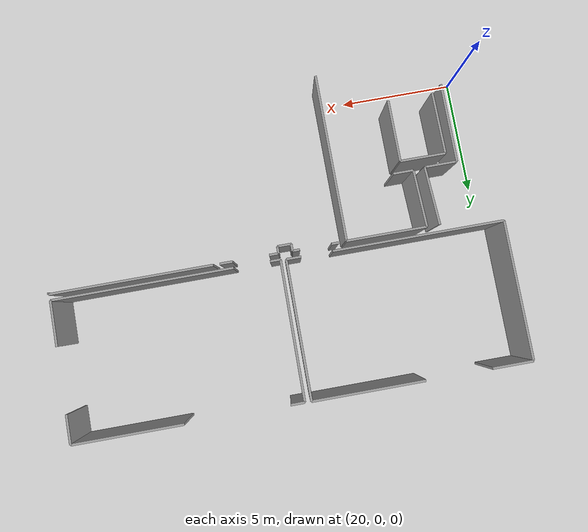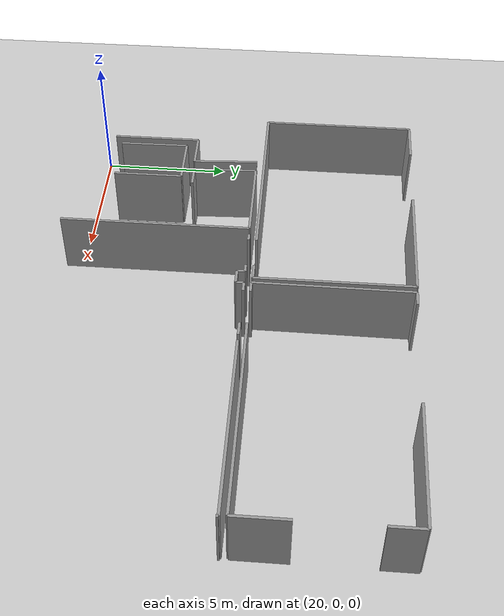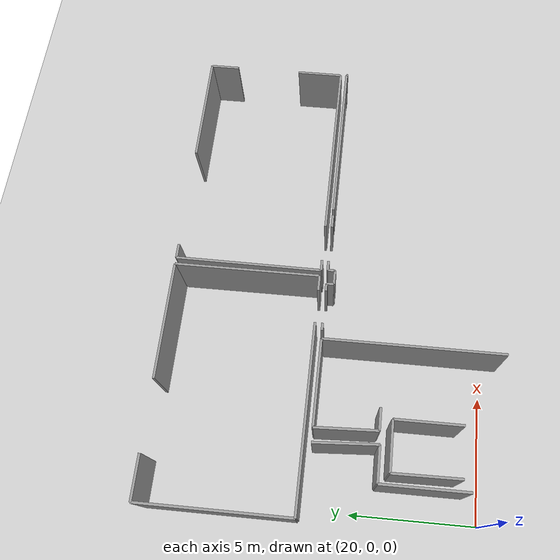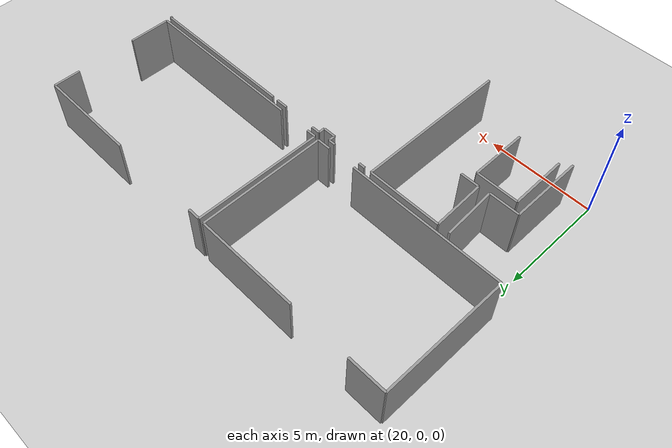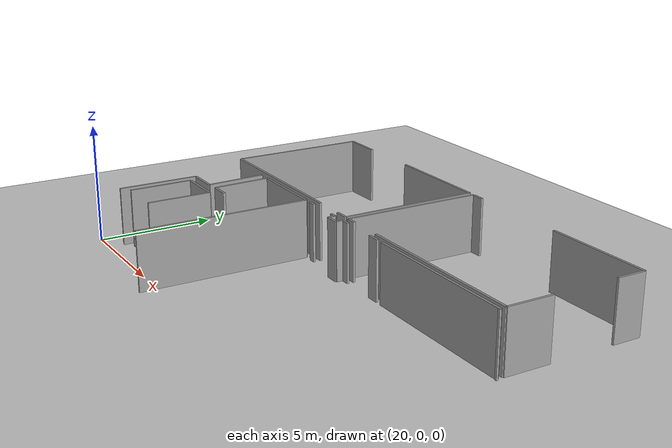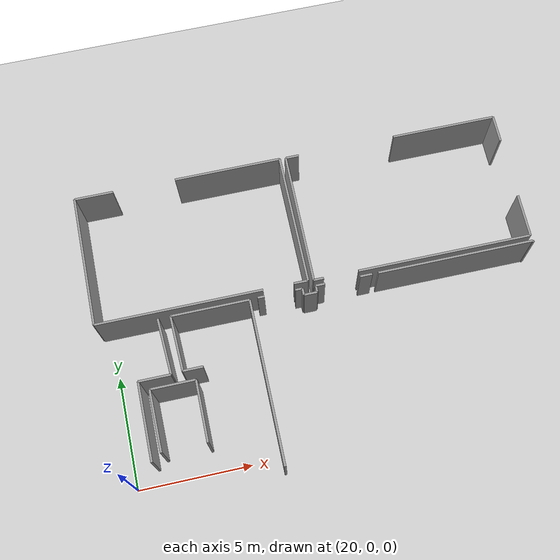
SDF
<sdf version="1.6">
 <world name="default">
  <model name="ground_plane">
   <static>1</static>
   <link name="link">
    <collision name="collision">
     <geometry><plane><normal>0 0 1</normal><size>100 100</size></plane></geometry>
     <surface><friction><ode><mu>100</mu><mu2>50</mu2></ode></friction></surface>
    </collision>
    <visual name="visual">
     <cast_shadows>0</cast_shadows>
     <geometry><plane><normal>0 0 1</normal><size>100 100</size></plane></geometry>
     <material>
      <script><uri>file://media/materials/scripts/gazebo.material</uri><name>Gazebo/Grey</name></script>
     </material>
    </visual>
   </link>
  </model>
  <model name="0510030966_A-40">
   <static>1</static>
   <link name="Wall_209">
    <collision name="Wall_209_Collision">
     <geometry><box><size>2.5475012175 0.1 2.5</size></box></geometry>
     <pose>1.27375060875 0 1.25 0 0 0</pose>
    </collision>
    <visual name="Wall_209_Visual">
     <pose>1.27375060875 0 1.25 0 0 0</pose>
     <geometry><box><size>2.5475012175 0.1 2.5</size></box></geometry>
     <material>
      <script><uri>file://media/materials/scripts/gazebo.material</uri><name>Gazebo/Grey</name></script>
      <ambient>1 1 1 1</ambient>
     </material>
    </visual>
    <pose>61.2576683221 -6.26547953209 0 0 0 -1.51587582899</pose>
   </link>
   <link name="Wall_210">
    <collision name="Wall_210_Collision">
     <geometry><box><size>1.40220746066 0.1 2.5</size></box></geometry>
     <pose>0.701103730329 0 1.25 0 0 0</pose>
    </collision>
    <visual name="Wall_210_Visual">
     <pose>0.701103730329 0 1.25 0 0 0</pose>
     <geometry><box><size>1.40220746066 0.1 2.5</size></box></geometry>
     <material>
      <script><uri>file://media/materials/scripts/gazebo.material</uri><name>Gazebo/Grey</name></script>
      <ambient>1 1 1 1</ambient>
     </material>
    </visual>
    <pose>61.3975080335 -8.8091397508 0 0 0 3.14159265359</pose>
   </link>
   <link name="Wall_211">
    <collision name="Wall_211_Collision">
     <geometry><box><size>3.44772839851 0.1 2.5</size></box></geometry>
     <pose>1.72386419926 0 1.25 0 0 0</pose>
    </collision>
    <visual name="Wall_211_Visual">
     <pose>1.72386419926 0 1.25 0 0 0</pose>
     <geometry><box><size>3.44772839851 0.1 2.5</size></box></geometry>
     <material>
      <script><uri>file://media/materials/scripts/gazebo.material</uri><name>Gazebo/Grey</name></script>
      <ambient>1 1 1 1</ambient>
     </material>
    </visual>
    <pose>59.9953005728 -8.8091397508 0 0 0 -1.57079632679</pose>
   </link>
   <link name="Wall_215">
    <collision name="Wall_215_Collision">
     <geometry><box><size>0.877395755274 0.1 2.5</size></box></geometry>
     <pose>0.438697877637 0 1.25 0 0 0</pose>
    </collision>
    <visual name="Wall_215_Visual">
     <pose>0.438697877637 0 1.25 0 0 0</pose>
     <geometry><box><size>0.877395755274 0.1 2.5</size></box></geometry>
     <material>
      <script><uri>file://media/materials/scripts/gazebo.material</uri><name>Gazebo/Grey</name></script>
      <ambient>1 1 1 1</ambient>
     </material>
    </visual>
    <pose>62.7804097392 -8.75960524812 0 0 0 3.14159265359</pose>
   </link>
   <link name="Wall_216">
    <collision name="Wall_216_Collision">
     <geometry><box><size>2.48368764992 0.1 2.5</size></box></geometry>
     <pose>1.24184382496 0 1.25 0 0 0</pose>
    </collision>
    <visual name="Wall_216_Visual">
     <pose>1.24184382496 0 1.25 0 0 0</pose>
     <geometry><box><size>2.48368764992 0.1 2.5</size></box></geometry>
     <material>
      <script><uri>file://media/materials/scripts/gazebo.material</uri><name>Gazebo/Grey</name></script>
      <ambient>1 1 1 1</ambient>
     </material>
    </visual>
    <pose>61.903013984 -8.75960524812 0 0 0 1.60839182749</pose>
   </link>
   <link name="Wall_217">
    <collision name="Wall_217_Collision">
     <geometry><box><size>3.45928644914 0.1 2.5</size></box></geometry>
     <pose>1.72964322457 0 1.25 0 0 0</pose>
    </collision>
    <visual name="Wall_217_Visual">
     <pose>1.72964322457 0 1.25 0 0 0</pose>
     <geometry><box><size>3.45928644914 0.1 2.5</size></box></geometry>
     <material>
      <script><uri>file://media/materials/scripts/gazebo.material</uri><name>Gazebo/Grey</name></script>
      <ambient>1 1 1 1</ambient>
     </material>
    </visual>
    <pose>61.8096604981 -6.27767264044 0 0 0 0.0</pose>
   </link>
   <link name="Wall_218">
    <collision name="Wall_218_Collision">
     <geometry><box><size>7.30367190378 0.1 2.5</size></box></geometry>
     <pose>3.65183595189 0 1.25 0 0 0</pose>
    </collision>
    <visual name="Wall_218_Visual">
     <pose>3.65183595189 0 1.25 0 0 0</pose>
     <geometry><box><size>7.30367190378 0.1 2.5</size></box></geometry>
     <material>
      <script><uri>file://media/materials/scripts/gazebo.material</uri><name>Gazebo/Grey</name></script>
      <ambient>1 1 1 1</ambient>
     </material>
    </visual>
    <pose>65.2689469473 -6.27767264044 0 0 0 -1.57079632679</pose>
   </link>
   <link name="Wall_223">
    <collision name="Wall_223_Collision">
     <geometry><box><size>0.0750638233015 0.1 2.5</size></box></geometry>
     <pose>0.0375319116508 0 1.25 0 0 0</pose>
    </collision>
    <visual name="Wall_223_Visual">
     <pose>0.0375319116508 0 1.25 0 0 0</pose>
     <geometry><box><size>0.0750638233015 0.1 2.5</size></box></geometry>
     <material>
      <script><uri>file://media/materials/scripts/gazebo.material</uri><name>Gazebo/Grey</name></script>
      <ambient>1 1 1 1</ambient>
     </material>
    </visual>
    <pose>77.946985381 -6.33584392821 0 0 0 1.57079632679</pose>
   </link>
   <link name="Wall_224">
    <collision name="Wall_224_Collision">
     <geometry><box><size>6.98233269404 0.1 2.5</size></box></geometry>
     <pose>3.49116634702 0 1.25 0 0 0</pose>
    </collision>
    <visual name="Wall_224_Visual">
     <pose>3.49116634702 0 1.25 0 0 0</pose>
     <geometry><box><size>6.98233269404 0.1 2.5</size></box></geometry>
     <material>
      <script><uri>file://media/materials/scripts/gazebo.material</uri><name>Gazebo/Grey</name></script>
      <ambient>1 1 1 1</ambient>
     </material>
    </visual>
    <pose>77.946985381 -6.26078010491 0 0 0 3.14159265359</pose>
   </link>
   <link name="Wall_232">
    <collision name="Wall_232_Collision">
     <geometry><box><size>0.300636327842 0.1 2.5</size></box></geometry>
     <pose>0.150318163921 0 1.25 0 0 0</pose>
    </collision>
    <visual name="Wall_232_Visual">
     <pose>0.150318163921 0 1.25 0 0 0</pose>
     <geometry><box><size>0.300636327842 0.1 2.5</size></box></geometry>
     <material>
      <script><uri>file://media/materials/scripts/gazebo.material</uri><name>Gazebo/Grey</name></script>
      <ambient>1 1 1 1</ambient>
     </material>
    </visual>
    <pose>65.6099729465 -6.26319332427 0 0 0 0.0</pose>
   </link>
   <link name="Wall_233">
    <collision name="Wall_233_Collision">
     <geometry><box><size>0.317401851828 0.1 2.5</size></box></geometry>
     <pose>0.158700925914 0 1.25 0 0 0</pose>
    </collision>
    <visual name="Wall_233_Visual">
     <pose>0.158700925914 0 1.25 0 0 0</pose>
     <geometry><box><size>0.317401851828 0.1 2.5</size></box></geometry>
     <material>
      <script><uri>file://media/materials/scripts/gazebo.material</uri><name>Gazebo/Grey</name></script>
      <ambient>1 1 1 1</ambient>
     </material>
    </visual>
    <pose>67.2733161444 -6.26319332427 0 0 0 0.0</pose>
   </link>
   <link name="Wall_234">
    <collision name="Wall_234_Collision">
     <geometry><box><size>0.298223108481 0.1 2.5</size></box></geometry>
     <pose>0.14911155424 0 1.25 0 0 0</pose>
    </collision>
    <visual name="Wall_234_Visual">
     <pose>0.14911155424 0 1.25 0 0 0</pose>
     <geometry><box><size>0.298223108481 0.1 2.5</size></box></geometry>
     <material>
      <script><uri>file://media/materials/scripts/gazebo.material</uri><name>Gazebo/Grey</name></script>
      <ambient>1 1 1 1</ambient>
     </material>
    </visual>
    <pose>67.5907179963 -6.26319332427 0 0 0 -1.57079632679</pose>
   </link>
   <link name="Wall_235">
    <collision name="Wall_235_Collision">
     <geometry><box><size>0.592889893691 0.1 2.5</size></box></geometry>
     <pose>0.296444946846 0 1.25 0 0 0</pose>
    </collision>
    <visual name="Wall_235_Visual">
     <pose>0.296444946846 0 1.25 0 0 0</pose>
     <geometry><box><size>0.592889893691 0.1 2.5</size></box></geometry>
     <material>
      <script><uri>file://media/materials/scripts/gazebo.material</uri><name>Gazebo/Grey</name></script>
      <ambient>1 1 1 1</ambient>
     </material>
    </visual>
    <pose>67.5907179963 -6.56141643275 0 0 0 0.0</pose>
   </link>
   <link name="Wall_236">
    <collision name="Wall_236_Collision">
     <geometry><box><size>0.300636327842 0.1 2.5</size></box></geometry>
     <pose>0.150318163921 0 1.25 0 0 0</pose>
    </collision>
    <visual name="Wall_236_Visual">
     <pose>0.150318163921 0 1.25 0 0 0</pose>
     <geometry><box><size>0.300636327842 0.1 2.5</size></box></geometry>
     <material>
      <script><uri>file://media/materials/scripts/gazebo.material</uri><name>Gazebo/Grey</name></script>
      <ambient>1 1 1 1</ambient>
     </material>
    </visual>
    <pose>68.18360789 -6.56141643275 0 0 0 1.57079632679</pose>
   </link>
   <link name="Wall_237">
    <collision name="Wall_237_Collision">
     <geometry><box><size>0.400848437123 0.1 2.5</size></box></geometry>
     <pose>0.200424218561 0 1.25 0 0 0</pose>
    </collision>
    <visual name="Wall_237_Visual">
     <pose>0.200424218561 0 1.25 0 0 0</pose>
     <geometry><box><size>0.400848437123 0.1 2.5</size></box></geometry>
     <material>
      <script><uri>file://media/materials/scripts/gazebo.material</uri><name>Gazebo/Grey</name></script>
      <ambient>1 1 1 1</ambient>
     </material>
    </visual>
    <pose>68.18360789 -6.26078010491 0 0 0 0.0</pose>
   </link>
   <link name="Wall_238">
    <collision name="Wall_238_Collision">
     <geometry><box><size>0.55224619918 0.1 2.5</size></box></geometry>
     <pose>0.27612309959 0 1.25 0 0 0</pose>
    </collision>
    <visual name="Wall_238_Visual">
     <pose>0.27612309959 0 1.25 0 0 0</pose>
     <geometry><box><size>0.55224619918 0.1 2.5</size></box></geometry>
     <material>
      <script><uri>file://media/materials/scripts/gazebo.material</uri><name>Gazebo/Grey</name></script>
      <ambient>1 1 1 1</ambient>
     </material>
    </visual>
    <pose>70.1451741963 -6.26078010491 0 0 0 0.0</pose>
   </link>
   <link name="Wall_246">
    <collision name="Wall_246_Collision">
     <geometry><box><size>2.70750511221 0.1 2.5</size></box></geometry>
     <pose>1.35375255611 0 1.25 0 0 0</pose>
    </collision>
    <visual name="Wall_246_Visual">
     <pose>1.35375255611 0 1.25 0 0 0</pose>
     <geometry><box><size>2.70750511221 0.1 2.5</size></box></geometry>
     <material>
      <script><uri>file://media/materials/scripts/gazebo.material</uri><name>Gazebo/Grey</name></script>
      <ambient>1 1 1 1</ambient>
     </material>
    </visual>
    <pose>62.3795613021 -11.9496272211 0 0 0 1.57079632679</pose>
   </link>
   <link name="Wall_247">
    <collision name="Wall_247_Collision">
     <geometry><box><size>1.97083814919 0.1 2.5</size></box></geometry>
     <pose>0.985419074594 0 1.25 0 0 0</pose>
    </collision>
    <visual name="Wall_247_Visual">
     <pose>0.985419074594 0 1.25 0 0 0</pose>
     <geometry><box><size>1.97083814919 0.1 2.5</size></box></geometry>
     <material>
      <script><uri>file://media/materials/scripts/gazebo.material</uri><name>Gazebo/Grey</name></script>
      <ambient>1 1 1 1</ambient>
     </material>
    </visual>
    <pose>62.3795613021 -9.2421221089 0 0 0 3.14159265359</pose>
   </link>
   <link name="Wall_248">
    <collision name="Wall_248_Collision">
     <geometry><box><size>2.70765325652 0.1 2.5</size></box></geometry>
     <pose>1.35382662826 0 1.25 0 0 0</pose>
    </collision>
    <visual name="Wall_248_Visual">
     <pose>1.35382662826 0 1.25 0 0 0</pose>
     <geometry><box><size>2.70765325652 0.1 2.5</size></box></geometry>
     <material>
      <script><uri>file://media/materials/scripts/gazebo.material</uri><name>Gazebo/Grey</name></script>
      <ambient>1 1 1 1</ambient>
     </material>
    </visual>
    <pose>60.4087231529 -9.2421221089 0 0 0 -1.56033557407</pose>
   </link>
   <link name="Wall_249">
    <collision name="Wall_249_Collision">
     <geometry><box><size>7.36666963027 0.1 2.5</size></box></geometry>
     <pose>3.68333481513 0 1.25 0 0 0</pose>
    </collision>
    <visual name="Wall_249_Visual">
     <pose>3.68333481513 0 1.25 0 0 0</pose>
     <geometry><box><size>7.36666963027 0.1 2.5</size></box></geometry>
     <material>
      <script><uri>file://media/materials/scripts/gazebo.material</uri><name>Gazebo/Grey</name></script>
      <ambient>1 1 1 1</ambient>
     </material>
    </visual>
    <pose>58.5523224061 -5.96065182325 0 0 0 0.0</pose>
   </link>
   <link name="Wall_250">
    <collision name="Wall_250_Collision">
     <geometry><box><size>0.633787611294 0.1 2.5</size></box></geometry>
     <pose>0.316893805647 0 1.25 0 0 0</pose>
    </collision>
    <visual name="Wall_250_Visual">
     <pose>0.316893805647 0 1.25 0 0 0</pose>
     <geometry><box><size>0.633787611294 0.1 2.5</size></box></geometry>
     <material>
      <script><uri>file://media/materials/scripts/gazebo.material</uri><name>Gazebo/Grey</name></script>
      <ambient>1 1 1 1</ambient>
     </material>
    </visual>
    <pose>67.2750943061 -5.96065182325 0 0 0 0.0</pose>
   </link>
   <link name="Wall_251">
    <collision name="Wall_251_Collision">
     <geometry><box><size>5.95353917671 0.1 2.5</size></box></geometry>
     <pose>2.97676958836 0 1.25 0 0 0</pose>
    </collision>
    <visual name="Wall_251_Visual">
     <pose>2.97676958836 0 1.25 0 0 0</pose>
     <geometry><box><size>5.95353917671 0.1 2.5</size></box></geometry>
     <material>
      <script><uri>file://media/materials/scripts/gazebo.material</uri><name>Gazebo/Grey</name></script>
      <ambient>1 1 1 1</ambient>
     </material>
    </visual>
    <pose>67.9088819174 -5.96065182325 0 0 0 1.57079632679</pose>
   </link>
   <link name="Wall_252">
    <collision name="Wall_252_Collision">
     <geometry><box><size>4.79697204476 0.1 2.5</size></box></geometry>
     <pose>2.39848602238 0 1.25 0 0 0</pose>
    </collision>
    <visual name="Wall_252_Visual">
     <pose>2.39848602238 0 1.25 0 0 0</pose>
     <geometry><box><size>4.79697204476 0.1 2.5</size></box></geometry>
     <material>
      <script><uri>file://media/materials/scripts/gazebo.material</uri><name>Gazebo/Grey</name></script>
      <ambient>1 1 1 1</ambient>
     </material>
    </visual>
    <pose>67.9088819174 -0.00711264653957 0 0 0 3.14159265359</pose>
   </link>
   <link name="Wall_253">
    <collision name="Wall_253_Collision">
     <geometry><box><size>1.72824609757 0.1 2.5</size></box></geometry>
     <pose>0.864123048785 0 1.25 0 0 0</pose>
    </collision>
    <visual name="Wall_253_Visual">
     <pose>0.864123048785 0 1.25 0 0 0</pose>
     <geometry><box><size>1.72824609757 0.1 2.5</size></box></geometry>
     <material>
      <script><uri>file://media/materials/scripts/gazebo.material</uri><name>Gazebo/Grey</name></script>
      <ambient>1 1 1 1</ambient>
     </material>
    </visual>
    <pose>60.3015254087 -0.00711264653957 0 0 0 3.14159265359</pose>
   </link>
   <link name="Wall_254">
    <collision name="Wall_254_Collision">
     <geometry><box><size>5.95357606154 0.1 2.5</size></box></geometry>
     <pose>2.97678803077 0 1.25 0 0 0</pose>
    </collision>
    <visual name="Wall_254_Visual">
     <pose>2.97678803077 0 1.25 0 0 0</pose>
     <geometry><box><size>5.95357606154 0.1 2.5</size></box></geometry>
     <material>
      <script><uri>file://media/materials/scripts/gazebo.material</uri><name>Gazebo/Grey</name></script>
      <ambient>1 1 1 1</ambient>
     </material>
    </visual>
    <pose>58.5732793111 -0.00711264653957 0 0 0 -1.57431638735</pose>
   </link>
   <link name="Wall_255">
    <collision name="Wall_255_Collision">
     <geometry><box><size>0.445683512631 0.1 2.5</size></box></geometry>
     <pose>0.222841756316 0 1.25 0 0 0</pose>
    </collision>
    <visual name="Wall_255_Visual">
     <pose>0.222841756316 0 1.25 0 0 0</pose>
     <geometry><box><size>0.445683512631 0.1 2.5</size></box></geometry>
     <material>
      <script><uri>file://media/materials/scripts/gazebo.material</uri><name>Gazebo/Grey</name></script>
      <ambient>1 1 1 1</ambient>
     </material>
    </visual>
    <pose>68.1489337381 -5.99519896359 0 0 0 0.0</pose>
   </link>
   <link name="Wall_256">
    <collision name="Wall_256_Collision">
     <geometry><box><size>7.76294565176 0.1 2.5</size></box></geometry>
     <pose>3.88147282588 0 1.25 0 0 0</pose>
    </collision>
    <visual name="Wall_256_Visual">
     <pose>3.88147282588 0 1.25 0 0 0</pose>
     <geometry><box><size>7.76294565176 0.1 2.5</size></box></geometry>
     <material>
      <script><uri>file://media/materials/scripts/gazebo.material</uri><name>Gazebo/Grey</name></script>
      <ambient>1 1 1 1</ambient>
     </material>
    </visual>
    <pose>70.1487305196 -5.99519896359 0 0 0 0.0</pose>
   </link>
   <link name="Wall_257">
    <collision name="Wall_257_Collision">
     <geometry><box><size>1.94530882857 0.1 2.5</size></box></geometry>
     <pose>0.972654414286 0 1.25 0 0 0</pose>
    </collision>
    <visual name="Wall_257_Visual">
     <pose>0.972654414286 0 1.25 0 0 0</pose>
     <geometry><box><size>1.94530882857 0.1 2.5</size></box></geometry>
     <material>
      <script><uri>file://media/materials/scripts/gazebo.material</uri><name>Gazebo/Grey</name></script>
      <ambient>1 1 1 1</ambient>
     </material>
    </visual>
    <pose>77.9116761714 -5.99519896359 0 0 0 1.57079632679</pose>
   </link>
   <link name="Wall_258">
    <collision name="Wall_258_Collision">
     <geometry><box><size>1.2345522208 0.1 2.5</size></box></geometry>
     <pose>0.617276110398 0 1.25 0 0 0</pose>
    </collision>
    <visual name="Wall_258_Visual">
     <pose>0.617276110398 0 1.25 0 0 0</pose>
     <geometry><box><size>1.2345522208 0.1 2.5</size></box></geometry>
     <material>
      <script><uri>file://media/materials/scripts/gazebo.material</uri><name>Gazebo/Grey</name></script>
      <ambient>1 1 1 1</ambient>
     </material>
    </visual>
    <pose>77.9116761714 -1.25398498724 0 0 0 1.57079632679</pose>
   </link>
   <link name="Wall_259">
    <collision name="Wall_259_Collision">
     <geometry><box><size>4.71289040174 0.1 2.5</size></box></geometry>
     <pose>2.35644520087 0 1.25 0 0 0</pose>
    </collision>
    <visual name="Wall_259_Visual">
     <pose>2.35644520087 0 1.25 0 0 0</pose>
     <geometry><box><size>4.71289040174 0.1 2.5</size></box></geometry>
     <material>
      <script><uri>file://media/materials/scripts/gazebo.material</uri><name>Gazebo/Grey</name></script>
      <ambient>1 1 1 1</ambient>
     </material>
    </visual>
    <pose>77.9116761714 -0.0194327664385 0 0 0 3.14159265359</pose>
   </link>
   <link name="Wall_260">
    <collision name="Wall_260_Collision">
     <geometry><box><size>0.595430124598 0.1 2.5</size></box></geometry>
     <pose>0.297715062299 0 1.25 0 0 0</pose>
    </collision>
    <visual name="Wall_260_Visual">
     <pose>0.297715062299 0 1.25 0 0 0</pose>
     <geometry><box><size>0.595430124598 0.1 2.5</size></box></geometry>
     <material>
      <script><uri>file://media/materials/scripts/gazebo.material</uri><name>Gazebo/Grey</name></script>
      <ambient>1 1 1 1</ambient>
     </material>
    </visual>
    <pose>68.7834834186 -0.0194327664385 0 0 0 3.14159265359</pose>
   </link>
   <link name="Wall_261">
    <collision name="Wall_261_Collision">
     <geometry><box><size>5.97589424125 0.1 2.5</size></box></geometry>
     <pose>2.98794712063 0 1.25 0 0 0</pose>
    </collision>
    <visual name="Wall_261_Visual">
     <pose>2.98794712063 0 1.25 0 0 0</pose>
     <geometry><box><size>5.97589424125 0.1 2.5</size></box></geometry>
     <material>
      <script><uri>file://media/materials/scripts/gazebo.material</uri><name>Gazebo/Grey</name></script>
      <ambient>1 1 1 1</ambient>
     </material>
    </visual>
    <pose>68.188053294 -0.0194327664385 0 0 0 -1.57734259984</pose>
   </link>
   <pose>-38.95 12.877458626 0 0 0 0</pose>
  </model>
 </world>
</sdf>
